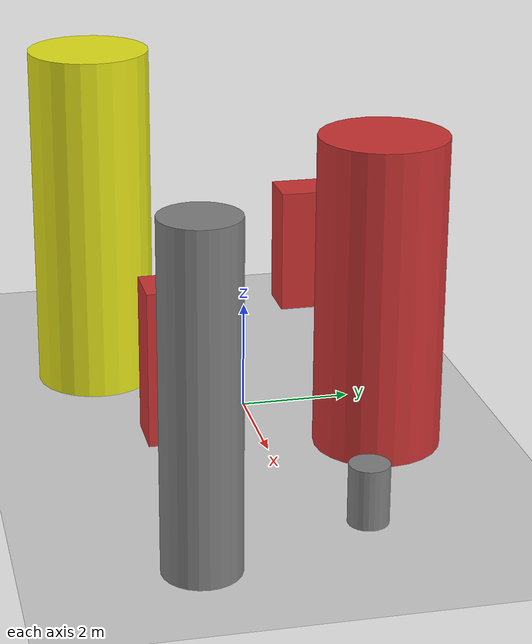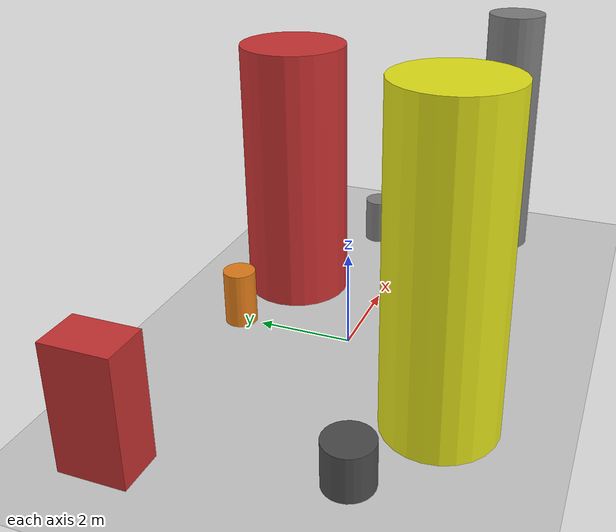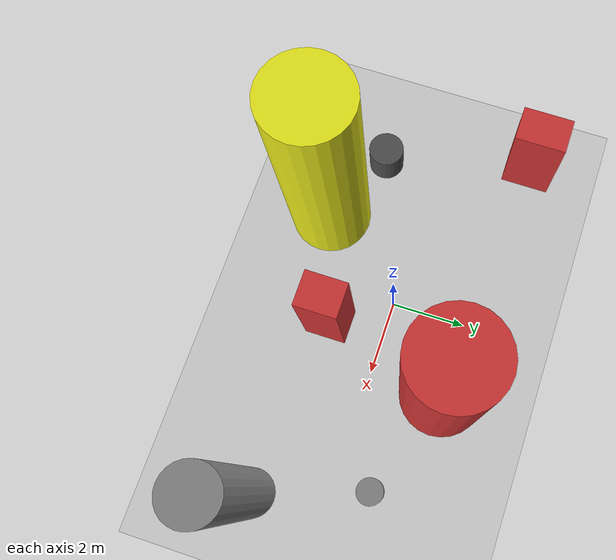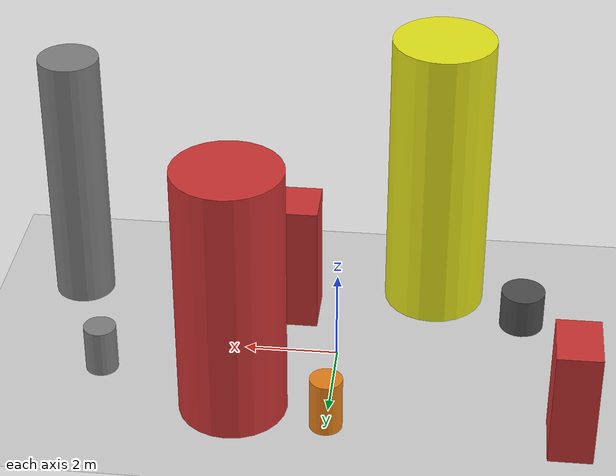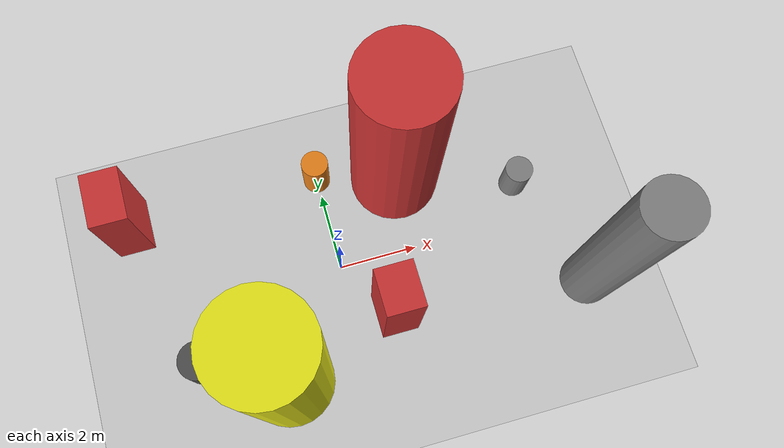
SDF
<?xml version='1.0'?>
<sdf version='1.6'>
  <world name='routeA_rl_v1__support_expansion__rl_train__mixed_3d_low_density_route__000121'>
    <!-- Sun light -->
    <light name='sun' type='directional'>
      <cast_shadows>1</cast_shadows>
      <pose>0 0 10 0 0 0</pose>
      <diffuse>0.8 0.8 0.8 1</diffuse>
      <specular>0.2 0.2 0.2 1</specular>
      <attenuation>
        <range>1000</range>
        <constant>0.9</constant>
        <linear>0.01</linear>
        <quadratic>0.001</quadratic>
      </attenuation>
      <direction>-0.5 0.1 -0.9</direction>
    </light>

    <!-- Ground plane -->
    <model name='ground_plane'>
      <static>1</static>
      <link name='link'>
        <collision name='collision'>
          <geometry>
            <plane>
              <normal>0 0 1</normal>
              <size>100 100</size>
            </plane>
          </geometry>
          <surface>
            <contact>
              <collide_bitmask>65535</collide_bitmask>
              <ode/>
            </contact>
            <friction>
              <ode>
                <mu>100</mu>
                <mu2>50</mu2>
              </ode>
              <torsional><ode/></torsional>
            </friction>
            <bounce/>
          </surface>
          <max_contacts>10</max_contacts>
        </collision>
        <visual name='visual'>
          <cast_shadows>0</cast_shadows>
          <geometry>
            <plane>
              <normal>0 0 1</normal>
              <size>100 100</size>
            </plane>
          </geometry>
          <material>
            <script>
              <uri>file://media/materials/scripts/gazebo.material</uri>
              <n>Gazebo/Grey</n>
            </script>
          </material>
        </visual>
      </link>
    </model>

    <!-- Environment -->
    <magnetic_field>6e-06 2.3e-05 -4.2e-05</magnetic_field>
    <atmosphere type='adiabatic'/>
    <physics name='default_physics' default='0' type='ode'>
      <gravity>0 0 -9.8</gravity>
      <max_step_size>0.004</max_step_size>
      <real_time_factor>1</real_time_factor>
      <real_time_update_rate>250</real_time_update_rate>
    </physics>
    <scene>
      <ambient>0.4 0.4 0.4 1</ambient>
      <background>0.7 0.7 0.7 1</background>
      <shadows>1</shadows>
    </scene>
    <wind/>
    <spherical_coordinates>
      <surface_model>EARTH_WGS84</surface_model>
      <latitude_deg>0</latitude_deg>
      <longitude_deg>0</longitude_deg>
      <elevation>0</elevation>
      <heading_deg>0</heading_deg>
    </spherical_coordinates>

    <!-- ============ OBSTACLES (8) ============ -->
    <model name='low_obs_0'>
      <static>1</static>
      <link name='link'>
        <visual name='visual'>
          <geometry>
            <cylinder>
              <radius>0.4841</radius>
              <length>0.9014</length>
            </cylinder>
          </geometry>
          <material>
            <script>
              <n>Gazebo/DarkGrey</n>
              <uri>file://media/materials/scripts/gazebo.material</uri>
            </script>
            <ambient>0.3 0.3 0.3 1</ambient>
          </material>
        </visual>
        <collision name='collision'>
          <geometry>
            <cylinder>
              <radius>0.4841</radius>
              <length>0.9014</length>
            </cylinder>
          </geometry>
          <max_contacts>10</max_contacts>
          <surface>
            <contact><ode/></contact>
            <bounce/>
            <friction>
              <ode><mu>1</mu><mu2>1</mu2></ode>
              <torsional><ode/></torsional>
            </friction>
          </surface>
        </collision>
      </link>
      <pose>-4.0000 -1.5000 0.4507 0 0 0.0000</pose>
    </model>

    <model name='low_obs_1'>
      <static>1</static>
      <link name='link'>
        <visual name='visual'>
          <geometry>
            <cylinder>
              <radius>0.3449</radius>
              <length>1.2056</length>
            </cylinder>
          </geometry>
          <material>
            <script>
              <n>Gazebo/Orange</n>
              <uri>file://media/materials/scripts/gazebo.material</uri>
            </script>
            <ambient>0.9 0.5 0.1 1</ambient>
          </material>
        </visual>
        <collision name='collision'>
          <geometry>
            <cylinder>
              <radius>0.3449</radius>
              <length>1.2056</length>
            </cylinder>
          </geometry>
          <max_contacts>10</max_contacts>
          <surface>
            <contact><ode/></contact>
            <bounce/>
            <friction>
              <ode><mu>1</mu><mu2>1</mu2></ode>
              <torsional><ode/></torsional>
            </friction>
          </surface>
        </collision>
      </link>
      <pose>0.0000 2.5000 0.6028 0 0 0.0000</pose>
    </model>

    <model name='low_obs_2'>
      <static>1</static>
      <link name='link'>
        <visual name='visual'>
          <geometry>
            <cylinder>
              <radius>0.3514</radius>
              <length>1.0631</length>
            </cylinder>
          </geometry>
          <material>
            <script>
              <n>Gazebo/Grey</n>
              <uri>file://media/materials/scripts/gazebo.material</uri>
            </script>
            <ambient>0.5 0.5 0.5 1</ambient>
          </material>
        </visual>
        <collision name='collision'>
          <geometry>
            <cylinder>
              <radius>0.3514</radius>
              <length>1.0631</length>
            </cylinder>
          </geometry>
          <max_contacts>10</max_contacts>
          <surface>
            <contact><ode/></contact>
            <bounce/>
            <friction>
              <ode><mu>1</mu><mu2>1</mu2></ode>
              <torsional><ode/></torsional>
            </friction>
          </surface>
        </collision>
      </link>
      <pose>5.0000 1.0000 0.5316 0 0 0.0000</pose>
    </model>

    <model name='tall_obs_0'>
      <static>1</static>
      <link name='link'>
        <visual name='visual'>
          <geometry>
            <cylinder>
              <radius>1.1132</radius>
              <length>6.4744</length>
            </cylinder>
          </geometry>
          <material>
            <script>
              <n>Gazebo/Yellow</n>
              <uri>file://media/materials/scripts/gazebo.material</uri>
            </script>
            <ambient>0.9 0.9 0.1 1</ambient>
          </material>
        </visual>
        <collision name='collision'>
          <geometry>
            <cylinder>
              <radius>1.1132</radius>
              <length>6.4744</length>
            </cylinder>
          </geometry>
          <max_contacts>10</max_contacts>
          <surface>
            <contact><ode/></contact>
            <bounce/>
            <friction>
              <ode><mu>1</mu><mu2>1</mu2></ode>
              <torsional><ode/></torsional>
            </friction>
          </surface>
        </collision>
      </link>
      <pose>-2.0000 -2.5000 3.2372 0 0 0.0000</pose>
    </model>

    <model name='tall_obs_1'>
      <static>1</static>
      <link name='link'>
        <visual name='visual'>
          <geometry>
            <cylinder>
              <radius>1.1454</radius>
              <length>5.7162</length>
            </cylinder>
          </geometry>
          <material>
            <script>
              <n>Gazebo/Red</n>
              <uri>file://media/materials/scripts/gazebo.material</uri>
            </script>
            <ambient>0.8 0.2 0.2 1</ambient>
          </material>
        </visual>
        <collision name='collision'>
          <geometry>
            <cylinder>
              <radius>1.1454</radius>
              <length>5.7162</length>
            </cylinder>
          </geometry>
          <max_contacts>10</max_contacts>
          <surface>
            <contact><ode/></contact>
            <bounce/>
            <friction>
              <ode><mu>1</mu><mu2>1</mu2></ode>
              <torsional><ode/></torsional>
            </friction>
          </surface>
        </collision>
      </link>
      <pose>2.0000 2.0000 2.8581 0 0 0.0000</pose>
    </model>

    <model name='tall_obs_2'>
      <static>1</static>
      <link name='link'>
        <visual name='visual'>
          <geometry>
            <cylinder>
              <radius>0.6614</radius>
              <length>5.8814</length>
            </cylinder>
          </geometry>
          <material>
            <script>
              <n>Gazebo/Grey</n>
              <uri>file://media/materials/scripts/gazebo.material</uri>
            </script>
            <ambient>0.5 0.5 0.5 1</ambient>
          </material>
        </visual>
        <collision name='collision'>
          <geometry>
            <cylinder>
              <radius>0.6614</radius>
              <length>5.8814</length>
            </cylinder>
          </geometry>
          <max_contacts>10</max_contacts>
          <surface>
            <contact><ode/></contact>
            <bounce/>
            <friction>
              <ode><mu>1</mu><mu2>1</mu2></ode>
              <torsional><ode/></torsional>
            </friction>
          </surface>
        </collision>
      </link>
      <pose>6.0000 -2.0000 2.9407 0 0 0.0000</pose>
    </model>

    <model name='med_obs_0'>
      <static>1</static>
      <link name='link'>
        <visual name='visual'>
          <geometry>
            <box>
              <size>0.9236 1.3403 2.5580</size>
            </box>
          </geometry>
          <material>
            <script>
              <n>Gazebo/Red</n>
              <uri>file://media/materials/scripts/gazebo.material</uri>
            </script>
            <ambient>0.8 0.2 0.2 1</ambient>
          </material>
        </visual>
        <collision name='collision'>
          <geometry>
            <box>
              <size>0.9236 1.3403 2.5580</size>
            </box>
          </geometry>
          <max_contacts>10</max_contacts>
          <surface>
            <contact><ode/></contact>
            <bounce/>
            <friction>
              <ode><mu>1</mu><mu2>1</mu2></ode>
              <torsional><ode/></torsional>
            </friction>
          </surface>
        </collision>
      </link>
      <pose>-5.0000 2.5000 1.2790 0 0 0.0000</pose>
    </model>

    <model name='med_obs_1'>
      <static>1</static>
      <link name='link'>
        <visual name='visual'>
          <geometry>
            <box>
              <size>0.9328 1.1221 2.9206</size>
            </box>
          </geometry>
          <material>
            <script>
              <n>Gazebo/Red</n>
              <uri>file://media/materials/scripts/gazebo.material</uri>
            </script>
            <ambient>0.8 0.2 0.2 1</ambient>
          </material>
        </visual>
        <collision name='collision'>
          <geometry>
            <box>
              <size>0.9328 1.1221 2.9206</size>
            </box>
          </geometry>
          <max_contacts>10</max_contacts>
          <surface>
            <contact><ode/></contact>
            <bounce/>
            <friction>
              <ode><mu>1</mu><mu2>1</mu2></ode>
              <torsional><ode/></torsional>
            </friction>
          </surface>
        </collision>
      </link>
      <pose>1.0000 -1.5000 1.4603 0 0 0.0000</pose>
    </model>

    <!-- GUI camera -->
    <gui fullscreen='0'>
      <camera name='user_camera'>
        <pose>-15 0 18 0 0.85 0.15</pose>
        <view_controller>orbit</view_controller>
        <projection_type>perspective</projection_type>
      </camera>
    </gui>
  </world>
</sdf>
